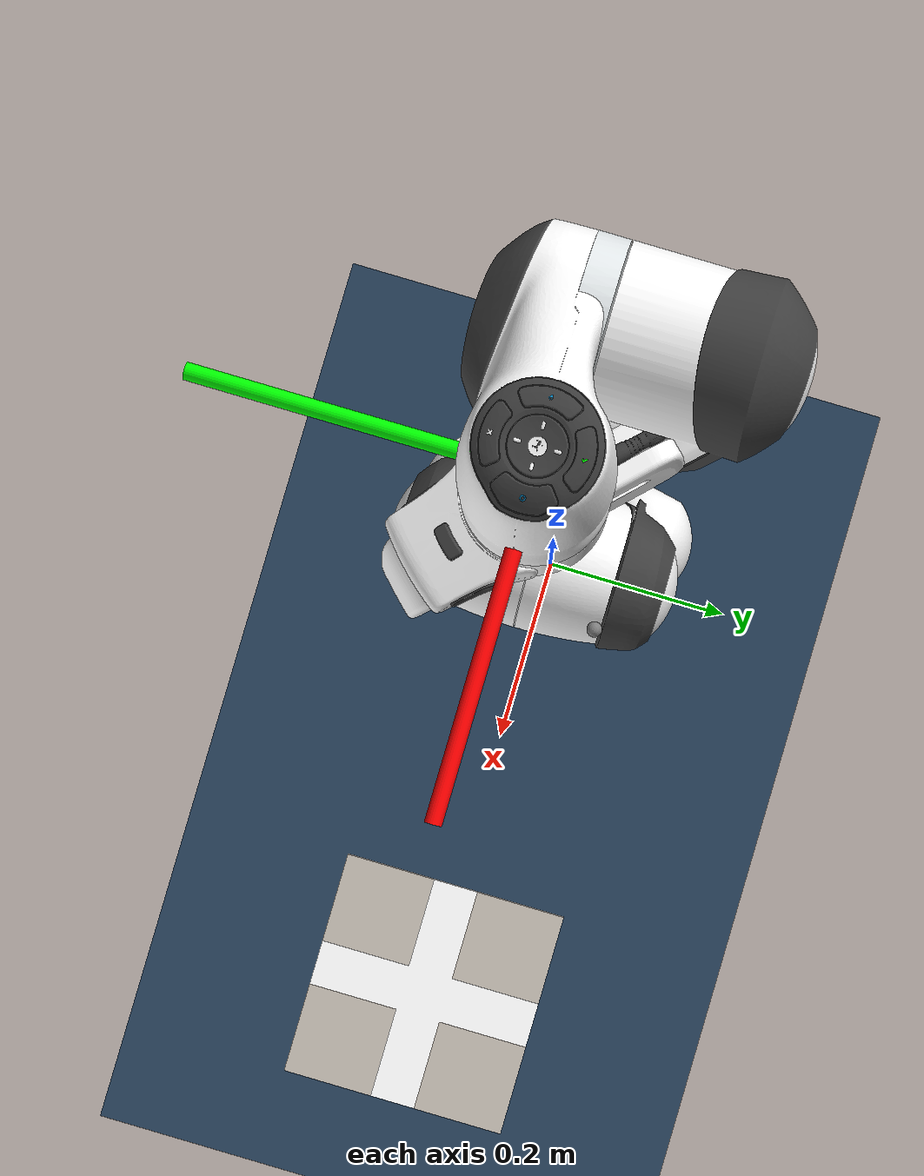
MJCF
<mujoco model="panda scene">
  <include file="panda_tag.xml"/>
  <include file="tag.xml"/>

  <statistic center="0.3 0 0.4" extent="1"/>

  <visual>
    <headlight diffuse="0.6 0.6 0.6" ambient="0.3 0.3 0.3" specular="0 0 0"/>
    <rgba haze="0.15 0.25 0.35 1"/>
    <global azimuth="120" elevation="-20"/>
  </visual>

  <asset>
    <texture type="skybox" builtin="gradient" rgb1="0.3 0.5 0.7" rgb2="0 0 0" width="512" height="3072"/>
    <texture type="2d" name="groundplane" builtin="checker" mark="edge" rgb1="0.2 0.3 0.4" rgb2="0.1 0.2 0.3"
      markrgb="0.8 0.8 0.8" width="300" height="300"/>
    <material name="groundplane" texture="groundplane" texuniform="true" texrepeat="5 5" reflectance="0.2"/>
  </asset>

  <worldbody>
    <light pos="0 0 1.5" dir="0 0 -1" directional="true"/>
    <geom name="floor" size="0 0 0.05" type="plane" material="groundplane"/>
  </worldbody>

</mujoco>

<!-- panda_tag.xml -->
<mujoco model="panda">
  <compiler angle="radian" meshdir="assets" autolimits="true"/>

  <option integrator="implicitfast"/>

  <default>
    <default class="panda">
      <material specular="0.5" shininess="0.25"/>
      <joint armature="0.1" damping="1" axis="0 0 1" range="-2.8973 2.8973"/>
      <general dyntype="none" biastype="affine" ctrlrange="-2.8973 2.8973" forcerange="-87 87"/>
      <default class="finger">
        <joint axis="0 1 0" type="slide" range="0 0.04"/>
      </default>

      <default class="visual">
        <geom type="mesh" contype="0" conaffinity="0" group="2"/>
      </default>
      <default class="collision">
        <geom type="mesh" group="3"/>
        <default class="fingertip_pad_collision_1">
          <geom type="box" size="0.0085 0.004 0.0085" pos="0 0.0055 0.0445"/>
        </default>
        <default class="fingertip_pad_collision_2">
          <geom type="box" size="0.003 0.002 0.003" pos="0.0055 0.002 0.05"/>
        </default>
        <default class="fingertip_pad_collision_3">
          <geom type="box" size="0.003 0.002 0.003" pos="-0.0055 0.002 0.05"/>
        </default>
        <default class="fingertip_pad_collision_4">
          <geom type="box" size="0.003 0.002 0.0035" pos="0.0055 0.002 0.0395"/>
        </default>
        <default class="fingertip_pad_collision_5">
          <geom type="box" size="0.003 0.002 0.0035" pos="-0.0055 0.002 0.0395"/>
        </default>
      </default>
    </default>
  </default>

  <asset>
    <material class="panda" name="white" rgba="1 1 1 1"/>
    <material class="panda" name="off_white" rgba="0.901961 0.921569 0.929412 1"/>
    <material class="panda" name="black" rgba="0.25 0.25 0.25 1"/>
    <material class="panda" name="green" rgba="0 1 0 1"/>
    <material class="panda" name="light_blue" rgba="0.039216 0.541176 0.780392 1"/>

    <!-- Collision meshes -->
    <mesh name="link0_c" file="link0.stl"/>
    <mesh name="link1_c" file="link1.stl"/>
    <mesh name="link2_c" file="link2.stl"/>
    <mesh name="link3_c" file="link3.stl"/>
    <mesh name="link4_c" file="link4.stl"/>
    <mesh name="link5_c0" file="link5_collision_0.obj"/>
    <mesh name="link5_c1" file="link5_collision_1.obj"/>
    <mesh name="link5_c2" file="link5_collision_2.obj"/>
    <mesh name="link6_c" file="link6.stl"/>
    <mesh name="link7_c" file="link7.stl"/>
    <mesh name="hand_c" file="hand.stl"/>

    <!-- Visual meshes -->
    <mesh file="link0_0.obj"/>
    <mesh file="link0_1.obj"/>
    <mesh file="link0_2.obj"/>
    <mesh file="link0_3.obj"/>
    <mesh file="link0_4.obj"/>
    <mesh file="link0_5.obj"/>
    <mesh file="link0_7.obj"/>
    <mesh file="link0_8.obj"/>
    <mesh file="link0_9.obj"/>
    <mesh file="link0_10.obj"/>
    <mesh file="link0_11.obj"/>
    <mesh file="link1.obj"/>
    <mesh file="link2.obj"/>
    <mesh file="link3_0.obj"/>
    <mesh file="link3_1.obj"/>
    <mesh file="link3_2.obj"/>
    <mesh file="link3_3.obj"/>
    <mesh file="link4_0.obj"/>
    <mesh file="link4_1.obj"/>
    <mesh file="link4_2.obj"/>
    <mesh file="link4_3.obj"/>
    <mesh file="link5_0.obj"/>
    <mesh file="link5_1.obj"/>
    <mesh file="link5_2.obj"/>
    <mesh file="link6_0.obj"/>
    <mesh file="link6_1.obj"/>
    <mesh file="link6_2.obj"/>
    <mesh file="link6_3.obj"/>
    <mesh file="link6_4.obj"/>
    <mesh file="link6_5.obj"/>
    <mesh file="link6_6.obj"/>
    <mesh file="link6_7.obj"/>
    <mesh file="link6_8.obj"/>
    <mesh file="link6_9.obj"/>
    <mesh file="link6_10.obj"/>
    <mesh file="link6_11.obj"/>
    <mesh file="link6_12.obj"/>
    <mesh file="link6_13.obj"/>
    <mesh file="link6_14.obj"/>
    <mesh file="link6_15.obj"/>
    <mesh file="link6_16.obj"/>
    <mesh file="link7_0.obj"/>
    <mesh file="link7_1.obj"/>
    <mesh file="link7_2.obj"/>
    <mesh file="link7_3.obj"/>
    <mesh file="link7_4.obj"/>
    <mesh file="link7_5.obj"/>
    <mesh file="link7_6.obj"/>
    <mesh file="link7_7.obj"/>
    <mesh file="hand_0.obj"/>
    <mesh file="hand_1.obj"/>
    <mesh file="hand_2.obj"/>
    <mesh file="hand_3.obj"/>
    <mesh file="hand_4.obj"/>
    <mesh file="finger_0.obj"/>
    <mesh file="finger_1.obj"/>
  </asset>

  <worldbody>
    <light name="top" pos="0 0 2" mode="trackcom"/>
    <body name="link0" childclass="panda">
      <inertial mass="0.629769" pos="-0.041018 -0.00014 0.049974"
        fullinertia="0.00315 0.00388 0.004285 8.2904e-7 0.00015 8.2299e-6"/>
      <geom mesh="link0_0" material="off_white" class="visual"/>
      <geom mesh="link0_1" material="black" class="visual"/>
      <geom mesh="link0_2" material="off_white" class="visual"/>
      <geom mesh="link0_3" material="black" class="visual"/>
      <geom mesh="link0_4" material="off_white" class="visual"/>
      <geom mesh="link0_5" material="black" class="visual"/>
      <geom mesh="link0_7" material="white" class="visual"/>
      <geom mesh="link0_8" material="white" class="visual"/>
      <geom mesh="link0_9" material="black" class="visual"/>
      <geom mesh="link0_10" material="off_white" class="visual"/>
      <geom mesh="link0_11" material="white" class="visual"/>
      <geom mesh="link0_c" class="collision"/>
      <body name="link1" pos="0 0 0.333">
        <inertial mass="4.970684" pos="0.003875 0.002081 -0.04762"
          fullinertia="0.70337 0.70661 0.0091170 -0.00013900 0.0067720 0.019169"/>
        <joint name="joint1"/>
        <geom material="white" mesh="link1" class="visual"/>
        <geom mesh="link1_c" class="collision"/>
        <body name="link2" quat="1 -1 0 0">
          <inertial mass="0.646926" pos="-0.003141 -0.02872 0.003495"
            fullinertia="0.0079620 2.8110e-2 2.5995e-2 -3.925e-3 1.0254e-2 7.04e-4"/>
          <joint name="joint2" range="-1.7628 1.7628"/>
          <geom material="white" mesh="link2" class="visual"/>
          <geom mesh="link2_c" class="collision"/>
          <body name="link3" pos="0 -0.316 0" quat="1 1 0 0">
            <joint name="joint3"/>
            <inertial mass="3.228604" pos="2.7518e-2 3.9252e-2 -6.6502e-2"
              fullinertia="3.7242e-2 3.6155e-2 1.083e-2 -4.761e-3 -1.1396e-2 -1.2805e-2"/>
            <geom mesh="link3_0" material="white" class="visual"/>
            <geom mesh="link3_1" material="white" class="visual"/>
            <geom mesh="link3_2" material="white" class="visual"/>
            <geom mesh="link3_3" material="black" class="visual"/>
            <geom mesh="link3_c" class="collision"/>
            <body name="link4" pos="0.0825 0 0" quat="1 1 0 0">
              <inertial mass="3.587895" pos="-5.317e-2 1.04419e-1 2.7454e-2"
                fullinertia="2.5853e-2 1.9552e-2 2.8323e-2 7.796e-3 -1.332e-3 8.641e-3"/>
              <joint name="joint4" range="-3.0718 -0.0698"/>
              <geom mesh="link4_0" material="white" class="visual"/>
              <geom mesh="link4_1" material="white" class="visual"/>
              <geom mesh="link4_2" material="black" class="visual"/>
              <geom mesh="link4_3" material="white" class="visual"/>
              <geom mesh="link4_c" class="collision"/>
              <body name="link5" pos="-0.0825 0.384 0" quat="1 -1 0 0">
                <inertial mass="1.225946" pos="-1.1953e-2 4.1065e-2 -3.8437e-2"
                  fullinertia="3.5549e-2 2.9474e-2 8.627e-3 -2.117e-3 -4.037e-3 2.29e-4"/>
                <joint name="joint5"/>
                <geom mesh="link5_0" material="black" class="visual"/>
                <geom mesh="link5_1" material="white" class="visual"/>
                <geom mesh="link5_2" material="white" class="visual"/>
                <geom mesh="link5_c0" class="collision"/>
                <geom mesh="link5_c1" class="collision"/>
                <geom mesh="link5_c2" class="collision"/>
                <body name="link6" quat="1 1 0 0">
                  <inertial mass="1.666555" pos="6.0149e-2 -1.4117e-2 -1.0517e-2"
                    fullinertia="1.964e-3 4.354e-3 5.433e-3 1.09e-4 -1.158e-3 3.41e-4"/>
                  <joint name="joint6" range="-0.0175 3.7525"/>
                  <geom mesh="link6_0" material="off_white" class="visual"/>
                  <geom mesh="link6_1" material="white" class="visual"/>
                  <geom mesh="link6_2" material="black" class="visual"/>
                  <geom mesh="link6_3" material="white" class="visual"/>
                  <geom mesh="link6_4" material="white" class="visual"/>
                  <geom mesh="link6_5" material="white" class="visual"/>
                  <geom mesh="link6_6" material="white" class="visual"/>
                  <geom mesh="link6_7" material="light_blue" class="visual"/>
                  <geom mesh="link6_8" material="light_blue" class="visual"/>
                  <geom mesh="link6_9" material="black" class="visual"/>
                  <geom mesh="link6_10" material="black" class="visual"/>
                  <geom mesh="link6_11" material="white" class="visual"/>
                  <geom mesh="link6_12" material="green" class="visual"/>
                  <geom mesh="link6_13" material="white" class="visual"/>
                  <geom mesh="link6_14" material="black" class="visual"/>
                  <geom mesh="link6_15" material="black" class="visual"/>
                  <geom mesh="link6_16" material="white" class="visual"/>
                  <geom mesh="link6_c" class="collision"/>
                  <body name="link7" pos="0.088 0 0" quat="1 1 0 0">
                    <inertial mass="7.35522e-01" pos="1.0517e-2 -4.252e-3 6.1597e-2"
                      fullinertia="1.2516e-2 1.0027e-2 4.815e-3 -4.28e-4 -1.196e-3 -7.41e-4"/>
                    <joint name="joint7"/>
                    <geom mesh="link7_0" material="white" class="visual"/>
                    <geom mesh="link7_1" material="black" class="visual"/>
                    <geom mesh="link7_2" material="black" class="visual"/>
                    <geom mesh="link7_3" material="black" class="visual"/>
                    <geom mesh="link7_4" material="black" class="visual"/>
                    <geom mesh="link7_5" material="black" class="visual"/>
                    <geom mesh="link7_6" material="black" class="visual"/>
                    <geom mesh="link7_7" material="white" class="visual"/>
                    <geom mesh="link7_c" class="collision"/>
                    <body name="hand_quat" pos="0 0 0">
                        <geom name="hand_x" type="cylinder" size="0.005" fromto="0 0 0 0.2 0 0" rgba="1 0 0 1" contype="0"
                              conaffinity="0"/>
                        <geom name="hand_y" type="cylinder" size="0.005" fromto="0 0 0 0 0.2 0" rgba="0 1 0 1" contype="0"
                              conaffinity="0"/>
                        <geom name="hand_z" type="cylinder" size="0.005" fromto="0 0 0 0 0 0.2" rgba="0 0 1 1" contype="0"
                              conaffinity="0"/>
                    </body>

                    <body name="hand" pos="0 0 0.107" quat="0.9238795 0 0 -0.3826834">
                      <inertial mass="0.73" pos="-0.01 0 0.03" diaginertia="0.001 0.0025 0.0017"/>
                      <geom mesh="hand_0" material="off_white" class="visual"/>
                      <geom mesh="hand_1" material="black" class="visual"/>
                      <geom mesh="hand_2" material="black" class="visual"/>
                      <geom mesh="hand_3" material="white" class="visual"/>
                      <geom mesh="hand_4" material="off_white" class="visual"/>
                      <geom mesh="hand_c" class="collision"/>

                      <!-- refer to the panda_grasptarget in panda.urdf in panda_gym -->
                      <body name="ee_center_body" pos="0 0 0.105" quat="1 0 0 0">

                          <site name="cam_site"
                              pos="0.08 0 -0.05"
                              quat="0 0 1 0"/>

                          <!-- Eye-in-Hand Camera -->
                          <camera name="eye_in_hand"
                              pos="0.08 0 -0.05"
                              quat="0 0 1 0"
                              fovy="60"
                              resolution="640 480"/>
                      </body>

                      <body name="left_finger" pos="0 0 0.0584">
                        <inertial mass="0.015" pos="0 0 0" diaginertia="2.375e-6 2.375e-6 7.5e-7"/>
                        <joint name="finger_joint1" class="finger"/>
                        <geom mesh="finger_0" material="off_white" class="visual"/>
                        <geom mesh="finger_1" material="black" class="visual"/>
                        <geom mesh="finger_0" class="collision"/>
                        <geom class="fingertip_pad_collision_1"/>
                        <geom class="fingertip_pad_collision_2"/>
                        <geom class="fingertip_pad_collision_3"/>
                        <geom class="fingertip_pad_collision_4"/>
                        <geom class="fingertip_pad_collision_5"/>
                      </body>
                      <body name="right_finger" pos="0 0 0.0584" quat="0 0 0 1">
                        <inertial mass="0.015" pos="0 0 0" diaginertia="2.375e-6 2.375e-6 7.5e-7"/>
                        <joint name="finger_joint2" class="finger"/>
                        <geom mesh="finger_0" material="off_white" class="visual"/>
                        <geom mesh="finger_1" material="black" class="visual"/>
                        <geom mesh="finger_0" class="collision"/>
                        <geom class="fingertip_pad_collision_1"/>
                        <geom class="fingertip_pad_collision_2"/>
                        <geom class="fingertip_pad_collision_3"/>
                        <geom class="fingertip_pad_collision_4"/>
                        <geom class="fingertip_pad_collision_5"/>
                      </body>
                    </body>
                  </body>
                </body>
              </body>
            </body>
          </body>
        </body>
      </body>
    </body>
  </worldbody>

  <tendon>
    <fixed name="split">
      <joint joint="finger_joint1" coef="0.5"/>
      <joint joint="finger_joint2" coef="0.5"/>
    </fixed>
  </tendon>

  <equality>
    <joint joint1="finger_joint1" joint2="finger_joint2" solimp="0.95 0.99 0.001" solref="0.005 1"/>
  </equality>

  <actuator>
    <!-- 积分速度控制器 intvelocity：仅使用 actrange，无ctrlrange -->
    <!-- 大臂关节：高刚度抗重力，阻尼防抖动 -->
    <intvelocity name="joint1_vel" joint="joint1" kp="50000" kv="500" actrange="-1.0 1.0"/>
    <intvelocity name="joint2_vel" joint="joint2" kp="50000" kv="500" actrange="-1.0 1.0"/>
    <intvelocity name="joint3_vel" joint="joint3" kp="50000" kv="500" actrange="-1.0 1.0"/>
    <intvelocity name="joint4_vel" joint="joint4" kp="50000" kv="500" actrange="-1.0 1.0"/>
    <!-- 小臂/腕部关节 -->
    <intvelocity name="joint5_vel" joint="joint5" kp="30000" kv="300" actrange="-1.0 1.0"/>
    <intvelocity name="joint6_vel" joint="joint6" kp="30000" kv="300" actrange="-1.0 1.0"/>
    <intvelocity name="joint7_vel" joint="joint7" kp="20000" kv="200" actrange="-1.0 1.0"/>

    <!-- 保留你的抓手执行器，完全不动 -->
    <general class="panda" name="actuator8" tendon="split"
            forcerange="-100 100" ctrlrange="0 255"
            gainprm="0.01568627451 0" biasprm="0 -100 -10"/>
  </actuator>

  <contact>
    <exclude body1="link0" body2="link1"/>
  </contact>
</mujoco>

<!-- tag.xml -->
<mujoco model="ibvs apriltag target">
  <asset>
    <texture type="2d" name="apriltag_0_tex" file="../misc/textures/tag36h11_0.png"/>
    <texture type="2d" name="apriltag_1_tex" file="../misc/textures/tag36h11_1.png"/>
    <texture type="2d" name="apriltag_2_tex" file="../misc/textures/tag36h11_2.png"/>
    <texture type="2d" name="apriltag_3_tex" file="../misc/textures/tag36h11_3.png"/>

    <material name="tag_board_white" rgba="1 1 1 1" specular="0.1" shininess="0.1"/>
    <material name="apriltag_0_mat" texture="apriltag_0_tex" texuniform="true" specular="0" shininess="0"/>
    <material name="apriltag_1_mat" texture="apriltag_1_tex" texuniform="true" specular="0" shininess="0"/>
    <material name="apriltag_2_mat" texture="apriltag_2_tex" texuniform="true" specular="0" shininess="0"/>
    <material name="apriltag_3_mat" texture="apriltag_3_tex" texuniform="true" specular="0" shininess="0"/>

    <mesh name="apriltag_square_100"
      vertex="-0.05 -0.05 -0.00005  0.05 -0.05 -0.00005  0.05 0.05 -0.00005  -0.05 0.05 -0.00005
              -0.05 -0.05 0.00005  0.05 -0.05 0.00005  0.05 0.05 0.00005  -0.05 0.05 0.00005"
      texcoord="0 0  1 0  1 1  0 1  1 0  0 0  0 1  1 1"
      face="0 2 1  0 3 2  4 5 6  4 6 7  0 1 5  0 5 4
            1 2 6  1 6 5  2 3 7  2 7 6  3 0 4  3 4 7"/>
  </asset>

  <worldbody>
    <body name="tag_target" pos="0.5 0 0.01" quat="1 0 0 0" gravcomp="1">
      <joint name="tag_slide_x" type="slide" axis="1 0 0" range="-0.5 0.5" damping="20"/>
      <joint name="tag_slide_y" type="slide" axis="0 1 0" range="-0.5 0.5" damping="20"/>
      <joint name="tag_slide_z" type="slide" axis="0 0 1" range="-0.2 0.5" damping="20"/>
      <joint name="tag_hinge_x" type="hinge" axis="1 0 0" range="-3.14159 3.14159" damping="5"/>
      <joint name="tag_hinge_y" type="hinge" axis="0 1 0" range="-3.14159 3.14159" damping="5"/>
      <joint name="tag_hinge_z" type="hinge" axis="0 0 1" range="-3.14159 3.14159" damping="5"/>

      <geom name="tag_board" type="box" size="0.125 0.125 0.005" material="tag_board_white"
        contype="0" conaffinity="0"/>

      <geom name="apriltag_0" type="mesh" mesh="apriltag_square_100" pos="-0.075 0.075 0.0051"
        material="apriltag_0_mat" contype="0" conaffinity="0"/>
      <geom name="apriltag_1" type="mesh" mesh="apriltag_square_100" pos="0.075 0.075 0.0051"
        material="apriltag_1_mat" contype="0" conaffinity="0"/>
      <geom name="apriltag_2" type="mesh" mesh="apriltag_square_100" pos="0.075 -0.075 0.0051"
        material="apriltag_2_mat" contype="0" conaffinity="0"/>
      <geom name="apriltag_3" type="mesh" mesh="apriltag_square_100" pos="-0.075 -0.075 0.0051"
        material="apriltag_3_mat" contype="0" conaffinity="0"/>
    </body>
  </worldbody>

  <actuator>
    <position name="tag_x_pos" joint="tag_slide_x" kp="200" ctrlrange="-0.5 0.5"/>
    <position name="tag_y_pos" joint="tag_slide_y" kp="200" ctrlrange="-0.5 0.5"/>
    <position name="tag_z_pos" joint="tag_slide_z" kp="200" ctrlrange="-0.2 0.5"/>
    <position name="tag_roll_pos" joint="tag_hinge_x" kp="50" ctrlrange="-3.14159 3.14159"/>
    <position name="tag_pitch_pos" joint="tag_hinge_y" kp="50" ctrlrange="-3.14159 3.14159"/>
    <position name="tag_yaw_pos" joint="tag_hinge_z" kp="50" ctrlrange="-3.14159 3.14159"/>
  </actuator>
</mujoco>
